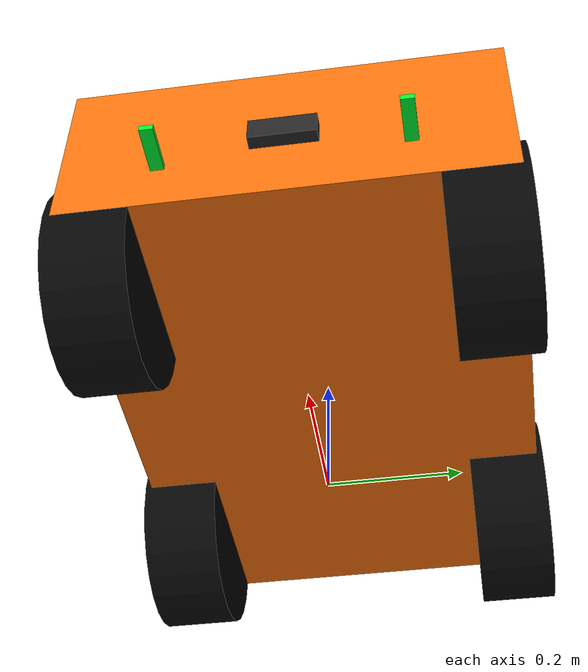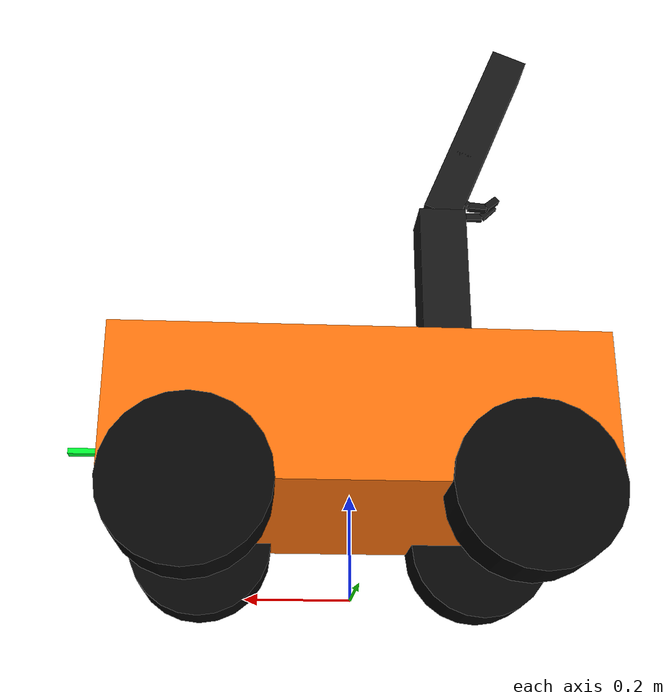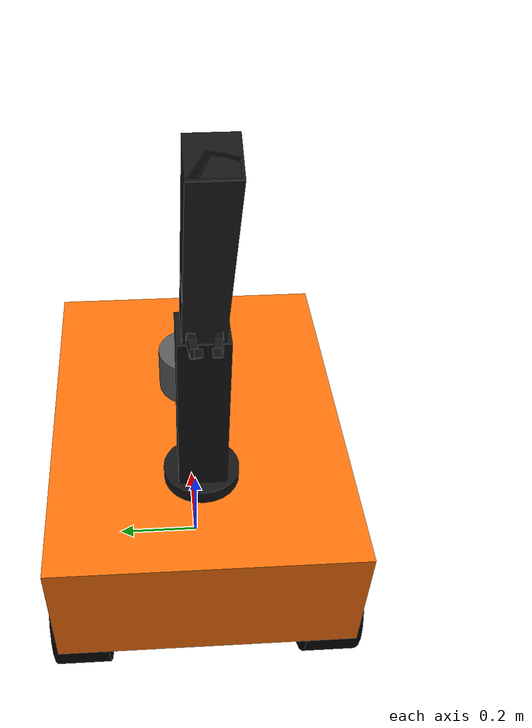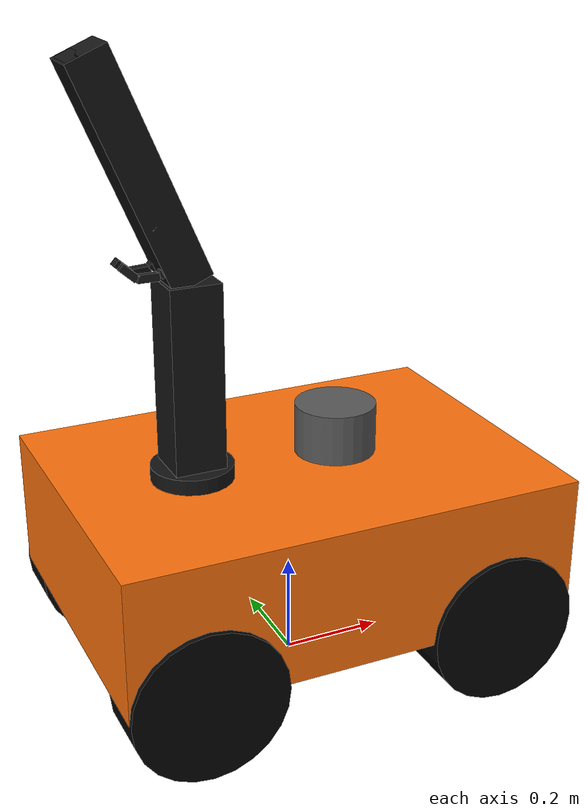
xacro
<?xml version="1.0"?>
<robot name="navy" xmlns:xacro="http://www.ros.org/wiki/xacro">

  <!-- ===================== Materials ===================== -->
  <xacro:macro name="material_color" params="name r g b a">
    <material name="${name}">
      <color rgba="${r} ${g} ${b} ${a}"/>
    </material>
  </xacro:macro>

  <xacro:material_color name="body_orange" r="1.0" g="0.45" b="0.05" a="1.0"/>
  <xacro:material_color name="matte_black" r="0.08" g="0.08" b="0.08" a="1.0"/>
  <xacro:material_color name="wheel_black" r="0.02" g="0.02" b="0.02" a="1.0"/>
  <xacro:material_color name="suspension_red" r="0.85" g="0.1" b="0.1" a="1.0"/>
  <xacro:material_color name="led_green" r="0.0" g="1.0" b="0.2" a="1.0"/>
  <xacro:material_color name="lidar_grey" r="0.35" g="0.35" b="0.35" a="1.0"/>
  <xacro:material_color name="camera_dark" r="0.15" g="0.15" b="0.15" a="1.0"/>

  <!-- ===================== Parameters ===================== -->
  <xacro:property name="wheel_radius" value="0.15"/>
  <xacro:property name="base_length" value="0.90"/>
  <xacro:property name="base_width" value="0.65"/>
  <xacro:property name="base_height" value="0.28"/>
  <xacro:property name="base_z" value="${wheel_radius}"/>
  <xacro:property name="wheel_width" value="0.12"/>
  <xacro:property name="wheel_separation" value="0.55"/>
  <xacro:property name="wheel_x_rear" value="-0.30"/>
  <xacro:property name="wheel_x_front" value="0.30"/>
  <xacro:property name="wheel_y" value="${wheel_separation / 2.0}"/>

  <!-- ===================== Base Link ===================== -->
  <link name="base_link">
    <visual>
      <origin xyz="0 0 ${base_z + base_height / 2.0}" rpy="0 0 0"/>
      <geometry>
        <box size="${base_length} ${base_width} ${base_height}"/>
      </geometry>
      <material name="body_orange"/>
    </visual>
    <collision>
      <origin xyz="0 0 ${base_z + base_height / 2.0}" rpy="0 0 0"/>
      <geometry>
        <box size="${base_length} ${base_width} ${base_height}"/>
      </geometry>
    </collision>
    <inertial>
      <origin xyz="0 0 ${base_z + base_height / 2.0}" rpy="0 0 0"/>
      <mass value="85.0"/>
      <inertia ixx="8.0" ixy="0.0" ixz="0.0"
               iyy="12.0" iyz="0.0"
               izz="15.0"/>
    </inertial>
  </link>

  <!-- Front LED strips (visual only) -->
  <link name="front_led_left_link">
    <visual>
      <origin xyz="0 0 0" rpy="0 0 0"/>
      <geometry>
        <box size="0.18 0.02 0.01"/>
      </geometry>
      <material name="led_green"/>
    </visual>
  </link>
  <joint name="front_led_left_joint" type="fixed">
    <parent link="base_link"/>
    <child link="front_led_left_link"/>
    <origin xyz="${base_length / 2.0 - 0.02} 0.18 ${base_z + 0.08}" rpy="0 0 0"/>
  </joint>

  <link name="front_led_right_link">
    <visual>
      <origin xyz="0 0 0" rpy="0 0 0"/>
      <geometry>
        <box size="0.18 0.02 0.01"/>
      </geometry>
      <material name="led_green"/>
    </visual>
  </link>
  <joint name="front_led_right_joint" type="fixed">
    <parent link="base_link"/>
    <child link="front_led_right_link"/>
    <origin xyz="${base_length / 2.0 - 0.02} -0.18 ${base_z + 0.08}" rpy="0 0 0"/>
  </joint>

  <!-- Front camera -->
  <link name="front_camera_link">
    <visual>
      <geometry>
        <box size="0.06 0.10 0.04"/>
      </geometry>
      <material name="camera_dark"/>
    </visual>
    <collision>
      <geometry>
        <box size="0.06 0.10 0.04"/>
      </geometry>
    </collision>
    <inertial>
      <mass value="0.2"/>
      <inertia ixx="0.0001" ixy="0" ixz="0" iyy="0.0001" iyz="0" izz="0.0001"/>
    </inertial>
  </link>
  <joint name="front_camera_joint" type="fixed">
    <parent link="base_link"/>
    <child link="front_camera_link"/>
    <origin xyz="${base_length / 2.0 - 0.01} 0 ${base_z + 0.12}" rpy="0 0 0"/>
  </joint>

  <!-- ===================== Wheel Macro ===================== -->
  <xacro:macro name="wheel" params="name x y joint_type joint_name">
    <link name="${name}">
      <visual>
        <origin xyz="0 0 0" rpy="1.5708 0 0"/>
        <geometry>
          <cylinder radius="${wheel_radius}" length="${wheel_width}"/>
        </geometry>
        <material name="wheel_black"/>
      </visual>
      <collision>
        <origin xyz="0 0 0" rpy="1.5708 0 0"/>
        <geometry>
          <cylinder radius="${wheel_radius}" length="${wheel_width}"/>
        </geometry>
      </collision>
      <inertial>
        <mass value="4.0"/>
        <inertia ixx="0.08" ixy="0" ixz="0"
                 iyy="0.08" iyz="0"
                 izz="0.04"/>
      </inertial>
    </link>

    <joint name="${joint_name}" type="${joint_type}">
      <parent link="base_link"/>
      <child link="${name}"/>
      <origin xyz="${x} ${y} ${wheel_radius}" rpy="0 0 0"/>
      <axis xyz="0 1 0"/>
    </joint>

    <!-- Suspension strut (visual) -->
    <link name="${name}_suspension_link">
      <visual>
        <origin xyz="0 0 0.06" rpy="0 0 0"/>
        <geometry>
          <cylinder radius="0.015" length="0.12"/>
        </geometry>
        <material name="suspension_red"/>
      </visual>
    </link>
    <joint name="${name}_suspension_joint" type="fixed">
      <parent link="${name}"/>
      <child link="${name}_suspension_link"/>
      <origin xyz="0 0 0" rpy="0 0 0"/>
    </joint>

    <gazebo reference="${name}">
      <mu1>1.2</mu1>
      <mu2>1.2</mu2>
      <material>Gazebo/Black</material>
    </gazebo>
  </xacro:macro>

  <!-- Rear driven wheels -->
  <xacro:wheel name="rear_left_wheel" x="${wheel_x_rear}" y="${wheel_y}"
               joint_type="continuous" joint_name="rear_left_wheel_joint"/>
  <xacro:wheel name="rear_right_wheel" x="${wheel_x_rear}" y="${-wheel_y}"
               joint_type="continuous" joint_name="rear_right_wheel_joint"/>

  <!-- Front caster wheels (fixed for stability) -->
  <xacro:wheel name="front_left_wheel" x="${wheel_x_front}" y="${wheel_y}"
               joint_type="fixed" joint_name="front_left_wheel_joint"/>
  <xacro:wheel name="front_right_wheel" x="${wheel_x_front}" y="${-wheel_y}"
               joint_type="fixed" joint_name="front_right_wheel_joint"/>

  <gazebo reference="front_left_wheel">
    <mu1>0.01</mu1>
    <mu2>0.01</mu2>
  </gazebo>
  <gazebo reference="front_right_wheel">
    <mu1>0.01</mu1>
    <mu2>0.01</mu2>
  </gazebo>

  <!-- ===================== LiDAR ===================== -->
  <link name="lidar_link">
    <visual>
      <geometry>
        <cylinder radius="0.08" length="0.10"/>
      </geometry>
      <material name="lidar_grey"/>
    </visual>
    <collision>
      <geometry>
        <cylinder radius="0.08" length="0.10"/>
      </geometry>
    </collision>
    <inertial>
      <mass value="1.5"/>
      <inertia ixx="0.01" ixy="0" ixz="0" iyy="0.01" iyz="0" izz="0.01"/>
    </inertial>
  </link>
  <joint name="lidar_joint" type="fixed">
    <parent link="base_link"/>
    <child link="lidar_link"/>
    <origin xyz="0.10 0 ${base_z + base_height + 0.05}" rpy="0 0 0"/>
  </joint>

  <gazebo reference="lidar_link">
    <material>Gazebo/Grey</material>
    <sensor name="lidar" type="ray">
      <pose>0 0 0 0 0 0</pose>
      <always_on>true</always_on>
      <visualize>true</visualize>
      <update_rate>10</update_rate>
      <ray>
        <scan>
          <horizontal>
            <samples>360</samples>
            <resolution>1</resolution>
            <min_angle>-3.14159</min_angle>
            <max_angle>3.14159</max_angle>
          </horizontal>
        </scan>
        <range>
          <min>0.15</min>
          <max>30.0</max>
          <resolution>0.01</resolution>
        </range>
        <noise>
          <type>gaussian</type>
          <mean>0.0</mean>
          <stddev>0.01</stddev>
        </noise>
      </ray>
      <plugin name="lidar_controller" filename="libgazebo_ros_ray_sensor.so">
        <ros>
          <namespace>/</namespace>
          <remapping>~/out:=/scan</remapping>
        </ros>
        <output_type>sensor_msgs/LaserScan</output_type>
        <frame_name>lidar_link</frame_name>
      </plugin>
    </sensor>
  </gazebo>

  <!-- ===================== Robotic Arm (visual approximation) ===================== -->
  <link name="arm_base_link">
    <visual>
      <geometry>
        <cylinder radius="0.08" length="0.06"/>
      </geometry>
      <material name="matte_black"/>
    </visual>
    <collision>
      <geometry>
        <cylinder radius="0.08" length="0.06"/>
      </geometry>
    </collision>
    <inertial>
      <mass value="2.0"/>
      <inertia ixx="0.02" ixy="0" ixz="0" iyy="0.02" iyz="0" izz="0.02"/>
    </inertial>
  </link>
  <joint name="arm_base_joint" type="fixed">
    <parent link="base_link"/>
    <child link="arm_base_link"/>
    <origin xyz="-0.20 0 ${base_z + base_height}" rpy="0 0 3.14159"/>
  </joint>

  <link name="arm_link1">
    <visual>
      <origin xyz="0 0 0.18" rpy="0 0 0"/>
      <geometry>
        <box size="0.10 0.10 0.36"/>
      </geometry>
      <material name="matte_black"/>
    </visual>
    <collision>
      <origin xyz="0 0 0.18" rpy="0 0 0"/>
      <geometry>
        <box size="0.10 0.10 0.36"/>
      </geometry>
    </collision>
    <inertial>
      <origin xyz="0 0 0.18" rpy="0 0 0"/>
      <mass value="5.0"/>
      <inertia ixx="0.08" ixy="0" ixz="0" iyy="0.08" iyz="0" izz="0.02"/>
    </inertial>
  </link>
  <joint name="arm_joint1" type="fixed">
    <parent link="arm_base_link"/>
    <child link="arm_link1"/>
    <origin xyz="0 0 0.03" rpy="0 0 0"/>
  </joint>

  <link name="arm_link2">
    <visual>
      <origin xyz="0 0 0.22" rpy="0 0 0"/>
      <geometry>
        <box size="0.08 0.08 0.44"/>
      </geometry>
      <material name="matte_black"/>
    </visual>
    <collision>
      <origin xyz="0 0 0.22" rpy="0 0 0"/>
      <geometry>
        <box size="0.08 0.08 0.44"/>
      </geometry>
    </collision>
    <inertial>
      <origin xyz="0 0 0.22" rpy="0 0 0"/>
      <mass value="4.0"/>
      <inertia ixx="0.07" ixy="0" ixz="0" iyy="0.07" iyz="0" izz="0.02"/>
    </inertial>
  </link>
  <joint name="arm_joint2" type="revolute">
    <parent link="arm_link1"/>
    <child link="arm_link2"/>
    <origin xyz="0 0 0.36" rpy="0 0.4 0"/>
    <axis xyz="0 1 0"/>
    <limit lower="-1.57" upper="1.57" effort="20.0" velocity="1.0"/>
  </joint>

  <link name="arm_link3">
    <visual>
      <origin xyz="0 0 0.18" rpy="0 0 0"/>
      <geometry>
        <box size="0.07 0.07 0.36"/>
      </geometry>
      <material name="matte_black"/>
    </visual>
    <collision>
      <origin xyz="0 0 0.18" rpy="0 0 0"/>
      <geometry>
        <box size="0.07 0.07 0.36"/>
      </geometry>
    </collision>
    <inertial>
      <origin xyz="0 0 0.18" rpy="0 0 0"/>
      <mass value="2.5"/>
      <inertia ixx="0.04" ixy="0" ixz="0" iyy="0.04" iyz="0" izz="0.01"/>
    </inertial>
  </link>
  <joint name="arm_joint3" type="revolute">
    <parent link="arm_link2"/>
    <child link="arm_link3"/>
    <origin xyz="0 0 0.44" rpy="0 3.14159 0"/>
    <axis xyz="0 1 0"/>
    <limit lower="-3.14159" upper="3.14159" effort="20.0" velocity="1.0"/>
  </joint>

  <link name="wrist_camera_link">
    <visual>
      <geometry>
        <box size="0.05 0.08 0.03"/>
      </geometry>
      <material name="camera_dark"/>
    </visual>
  </link>
  <joint name="wrist_camera_joint" type="fixed">
    <parent link="arm_link3"/>
    <child link="wrist_camera_link"/>
    <origin xyz="0 0 0.30" rpy="0 0 0"/>
  </joint>

  <xacro:macro name="curved_gripper_finger" params="prefix y_sign">
  <link name="${prefix}_finger_link1">
    <visual>
      <origin xyz="0 0 0.025" rpy="0 0 0"/>
      <geometry>
        <box size="0.015 0.015 0.05"/>
      </geometry>
      <material name="matte_black"/>
    </visual>
  </link>
  <joint name="${prefix}_finger_joint1" type="fixed">
    <parent link="gripper_base_link"/>
    <child link="${prefix}_finger_link1"/>
    <origin xyz="0 ${y_sign * 0.025} 0" rpy="0 0 ${y_sign * 0.15}"/>
  </joint>

  <link name="${prefix}_finger_link2">
    <visual>
      <origin xyz="0 0 0.02" rpy="0 0 0"/>
      <geometry>
        <box size="0.015 0.015 0.04"/>
      </geometry>
      <material name="matte_black"/>
    </visual>
  </link>
  <joint name="${prefix}_finger_joint2" type="revolute">
    <parent link="${prefix}_finger_link1"/>
    <child link="${prefix}_finger_link2"/>
    <origin xyz="0 0 0.05" rpy="0 -0.75 0"/>
    <axis xyz="0 1 0"/>
    <limit lower="-1.2" upper="1.2" effort="5.0" velocity="1.5"/>
  </joint>

  <link name="${prefix}_finger_link3">
    <visual>
      <origin xyz="0 0 0.018" rpy="0 0 0"/>
      <geometry>
        <box size="0.015 0.015 0.036"/>
      </geometry>
      <material name="matte_black"/>
    </visual>
  </link>
  <joint name="${prefix}_finger_joint3" type="revolute">
    <parent link="${prefix}_finger_link2"/>
    <child link="${prefix}_finger_link3"/>
    <origin xyz="0 0 0.04" rpy="0 -0.75 0"/>
    <axis xyz="0 1 0"/>
    <limit lower="-1.2" upper="1.2" effort="5.0" velocity="1.5"/>
  </joint>
  </xacro:macro>

  <link name="gripper_base_link">
    <visual>
      <geometry>
        <box size="0.06 0.04 0.04"/>
      </geometry>
      <material name="matte_black"/>
    </visual>
    <collision>
      <geometry>
        <box size="0.06 0.04 0.04"/>
      </geometry>
    </collision>
    <inertial>
      <mass value="0.5"/>
      <inertia ixx="0.001" ixy="0" ixz="0" iyy="0.001" iyz="0" izz="0.001"/>
    </inertial>
  </link>
  <joint name="gripper_base_joint" type="revolute">
    <parent link="arm_link3"/>
    <child link="gripper_base_link"/>
    <origin xyz="0 0 0.38" rpy="0 -1.2 0"/>
    <axis xyz="0 1 0"/>
    <limit lower="-2.0" upper="2.0" effort="8.0" velocity="1.0"/>
  </joint>

  <xacro:curved_gripper_finger prefix="gripper_left" y_sign="1"/>
  <xacro:curved_gripper_finger prefix="gripper_right" y_sign="-1"/>

  <!-- ===================== Gazebo Materials ===================== -->
  <gazebo reference="base_link">
    <material>Gazebo/Orange</material>
  </gazebo>

  <gazebo reference="arm_base_link">
    <material>Gazebo/Black</material>
  </gazebo>
  <gazebo reference="arm_link1">
    <material>Gazebo/Black</material>
  </gazebo>
  <gazebo reference="arm_link2">
    <material>Gazebo/Black</material>
  </gazebo>
  <gazebo reference="arm_link3">
    <material>Gazebo/Black</material>
  </gazebo>
  <gazebo reference="gripper_base_link">
    <material>Gazebo/Black</material>
  </gazebo>
  <gazebo reference="gripper_left_finger_link1">
    <material>Gazebo/Black</material>
  </gazebo>
  <gazebo reference="gripper_left_finger_link2">
    <material>Gazebo/Black</material>
  </gazebo>
  <gazebo reference="gripper_left_finger_link3">
    <material>Gazebo/Black</material>
  </gazebo>
  <gazebo reference="gripper_right_finger_link1">
    <material>Gazebo/Black</material>
  </gazebo>
  <gazebo reference="gripper_right_finger_link2">
    <material>Gazebo/Black</material>
  </gazebo>
  <gazebo reference="gripper_right_finger_link3">
    <material>Gazebo/Black</material>
  </gazebo>

  <!-- ===================== Gazebo Diff Drive ===================== -->
  <gazebo>
    <plugin name="navy_diff_drive" filename="libgazebo_ros_diff_drive.so">
      <ros>
        <namespace>/</namespace>
        <remapping>cmd_vel:=/cmd_vel</remapping>
      </ros>

      <left_joint>rear_left_wheel_joint</left_joint>
      <right_joint>rear_right_wheel_joint</right_joint>
      <wheel_separation>${wheel_separation}</wheel_separation>
      <wheel_diameter>${2 * wheel_radius}</wheel_diameter>

      <max_wheel_torque>300</max_wheel_torque>
      <max_wheel_acceleration>8.0</max_wheel_acceleration>

      <odometry_frame>odom</odometry_frame>
      <robot_base_frame>base_link</robot_base_frame>
      <publish_odom>true</publish_odom>
      <publish_odom_tf>true</publish_odom_tf>
      <publish_wheel_tf>false</publish_wheel_tf>
    </plugin>
  </gazebo>

</robot>
